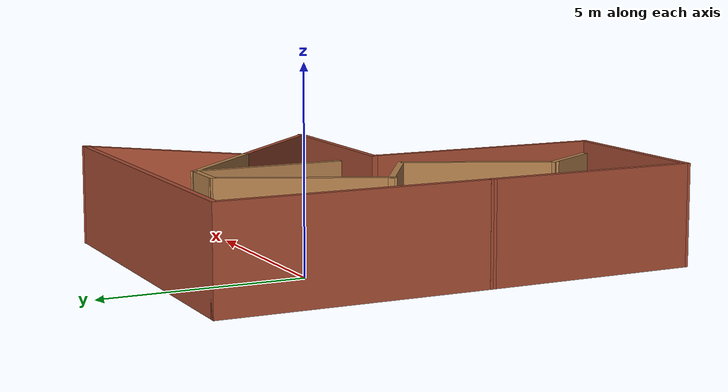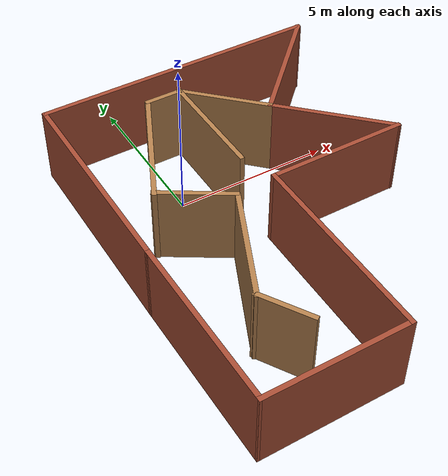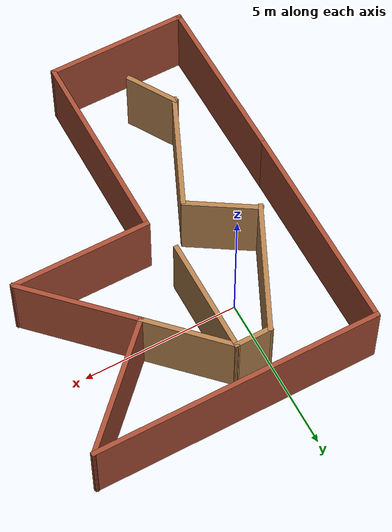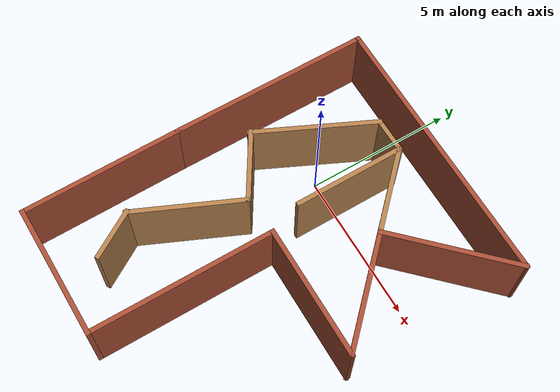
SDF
<?xml version='1.0'?>
<sdf version='1.7'>
  <model name='office.world'>
    <pose>1.74881 -2.66528 0 0 -0 0</pose>
    <link name='Wall_15'>
      <collision name='Wall_15_Collision'>
        <geometry>
          <box>
            <size>6.75 0.15 2.5</size>
          </box>
        </geometry>
        <pose>0 0 1.25 0 -0 0</pose>
      </collision>
      <visual name='Wall_15_Visual'>
        <pose>0 0 1.25 0 -0 0</pose>
        <geometry>
          <box>
            <size>6.75 0.15 2.5</size>
          </box>
        </geometry>
        <material>
          <script>
            <uri>file://media/materials/scripts/gazebo.material</uri>
            <name>Gazebo/Bricks</name>
          </script>
          <ambient>1 1 1 1</ambient>
        </material>
        <meta>
          <layer>0</layer>
        </meta>
      </visual>
      <pose>-4.56521 2.63393 0 0 -0 1.5708</pose>
    </link>
    <link name='Wall_17'>
      <collision name='Wall_17_Collision'>
        <geometry>
          <box>
            <size>9.25 0.15 2.5</size>
          </box>
        </geometry>
        <pose>0 0 1.25 0 -0 0</pose>
      </collision>
      <visual name='Wall_17_Visual'>
        <pose>0 0 1.25 0 -0 0</pose>
        <geometry>
          <box>
            <size>9.25 0.15 2.5</size>
          </box>
        </geometry>
        <material>
          <script>
            <uri>file://media/materials/scripts/gazebo.material</uri>
            <name>Gazebo/Bricks</name>
          </script>
          <ambient>1 1 1 1</ambient>
        </material>
        <meta>
          <layer>0</layer>
        </meta>
      </visual>
      <pose>-0.015206 5.93393 0 0 -0 0</pose>
    </link>
    <link name='Wall_18'>
      <collision name='Wall_18_Collision'>
        <geometry>
          <box>
            <size>4.5 0.15 2.5</size>
          </box>
        </geometry>
        <pose>0 0 1.25 0 -0 0</pose>
      </collision>
      <visual name='Wall_18_Visual'>
        <pose>0 0 1.25 0 -0 0</pose>
        <geometry>
          <box>
            <size>4.5 0.15 2.5</size>
          </box>
        </geometry>
        <material>
          <script>
            <uri>file://media/materials/scripts/gazebo.material</uri>
            <name>Gazebo/Bricks</name>
          </script>
          <ambient>1 1 1 1</ambient>
        </material>
        <meta>
          <layer>0</layer>
        </meta>
      </visual>
      <pose>2.99684 4.39597 0 0 -0 -2.35619</pose>
    </link>
    <link name='Wall_19'>
      <collision name='Wall_19_Collision'>
        <geometry>
          <box>
            <size>4 0.15 2.5</size>
          </box>
        </geometry>
        <pose>0 0 1.25 0 -0 0</pose>
      </collision>
      <visual name='Wall_19_Visual'>
        <pose>0 0 1.25 0 -0 0</pose>
        <geometry>
          <box>
            <size>4 0.15 2.5</size>
          </box>
        </geometry>
        <material>
          <script>
            <uri>file://media/materials/scripts/gazebo.material</uri>
            <name>Gazebo/Bricks</name>
          </script>
          <ambient>1 1 1 1</ambient>
        </material>
        <meta>
          <layer>0</layer>
        </meta>
      </visual>
      <pose>2.82006 1.49684 0 0 -0 -0.785398</pose>
    </link>
    <link name='Wall_20'>
      <collision name='Wall_20_Collision'>
        <geometry>
          <box>
            <size>4.5 0.15 2.5</size>
          </box>
        </geometry>
        <pose>0 0 1.25 0 -0 0</pose>
      </collision>
      <visual name='Wall_20_Visual'>
        <pose>0 0 1.25 0 -0 0</pose>
        <geometry>
          <box>
            <size>4.5 0.15 2.5</size>
          </box>
        </geometry>
        <material>
          <script>
            <uri>file://media/materials/scripts/gazebo.material</uri>
            <name>Gazebo/Bricks</name>
          </script>
          <ambient>1 1 1 1</ambient>
        </material>
        <meta>
          <layer>0</layer>
        </meta>
      </visual>
      <pose>2.00624 0.135656 0 0 -0 3.14159</pose>
    </link>
    <link name='Wall_21'>
      <collision name='Wall_21_Collision'>
        <geometry>
          <box>
            <size>6.25 0.15 2.5</size>
          </box>
        </geometry>
        <pose>0 0 1.25 0 -0 0</pose>
      </collision>
      <visual name='Wall_21_Visual'>
        <pose>0 0 1.25 0 -0 0</pose>
        <geometry>
          <box>
            <size>6.25 0.15 2.5</size>
          </box>
        </geometry>
        <material>
          <script>
            <uri>file://media/materials/scripts/gazebo.material</uri>
            <name>Gazebo/Bricks</name>
          </script>
          <ambient>1 1 1 1</ambient>
        </material>
        <meta>
          <layer>0</layer>
        </meta>
      </visual>
      <pose>-0.168759 -2.91434 0 0 -0 -1.5708</pose>
    </link>
    <link name='Wall_22'>
      <collision name='Wall_22_Collision'>
        <geometry>
          <box>
            <size>4.5 0.15 2.5</size>
          </box>
        </geometry>
        <pose>0 0 1.25 0 -0 0</pose>
      </collision>
      <visual name='Wall_22_Visual'>
        <pose>0 0 1.25 0 -0 0</pose>
        <geometry>
          <box>
            <size>4.5 0.15 2.5</size>
          </box>
        </geometry>
        <material>
          <script>
            <uri>file://media/materials/scripts/gazebo.material</uri>
            <name>Gazebo/Bricks</name>
          </script>
          <ambient>1 1 1 1</ambient>
        </material>
        <meta>
          <layer>0</layer>
        </meta>
      </visual>
      <pose>-2.34376 -5.96434 0 0 -0 3.14159</pose>
    </link>
    <link name='Wall_23'>
      <collision name='Wall_23_Collision'>
        <geometry>
          <box>
            <size>5.44848 0.15 2.5</size>
          </box>
        </geometry>
        <pose>0 0 1.25 0 -0 0</pose>
      </collision>
      <visual name='Wall_23_Visual'>
        <pose>0 0 1.25 0 -0 0</pose>
        <geometry>
          <box>
            <size>5.44848 0.15 2.5</size>
          </box>
        </geometry>
        <material>
          <script>
            <uri>file://media/materials/scripts/gazebo.material</uri>
            <name>Gazebo/Bricks</name>
          </script>
          <ambient>1 1 1 1</ambient>
        </material>
        <meta>
          <layer>0</layer>
        </meta>
      </visual>
      <pose>-4.54198 -3.31521 0 0 -0 1.57956</pose>
    </link>
    <link name='Wall_25'>
      <collision name='Wall_25_Collision'>
        <geometry>
          <box>
            <size>3 0.15 2.5</size>
          </box>
        </geometry>
        <pose>0 0 1.25 0 -0 0</pose>
      </collision>
      <visual name='Wall_25_Visual'>
        <pose>0 0 1.25 0 -0 0</pose>
        <geometry>
          <box>
            <size>3 0.15 2.5</size>
          </box>
        </geometry>
        <material>
          <script>
            <uri>file://media/materials/scripts/gazebo.material</uri>
            <name>Gazebo/Wood</name>
          </script>
          <ambient>1 1 1 1</ambient>
        </material>
        <meta>
          <layer>0</layer>
        </meta>
      </visual>
      <pose>0.451252 3.86564 0 0 -0 2.35619</pose>
    </link>
    <link name='Wall_26'>
      <collision name='Wall_26_Collision'>
        <geometry>
          <box>
            <size>3.75 0.15 2.5</size>
          </box>
        </geometry>
        <pose>0 0 1.25 0 -0 0</pose>
      </collision>
      <visual name='Wall_26_Visual'>
        <pose>0 0 1.25 0 -0 0</pose>
        <geometry>
          <box>
            <size>3.75 0.15 2.5</size>
          </box>
        </geometry>
        <material>
          <script>
            <uri>file://media/materials/scripts/gazebo.material</uri>
            <name>Gazebo/Wood</name>
          </script>
          <ambient>1 1 1 1</ambient>
        </material>
        <meta>
          <layer>0</layer>
        </meta>
      </visual>
      <pose>-0.556375 3.07327 0 0 -0 -1.5708</pose>
    </link>
    <link name='Wall_28'>
      <collision name='Wall_28_Collision'>
        <geometry>
          <box>
            <size>1.25 0.15 2.5</size>
          </box>
        </geometry>
        <pose>0 0 1.25 0 -0 0</pose>
      </collision>
      <visual name='Wall_28_Visual'>
        <pose>0 0 1.25 0 -0 0</pose>
        <geometry>
          <box>
            <size>1.25 0.15 2.5</size>
          </box>
        </geometry>
        <material>
          <script>
            <uri>file://media/materials/scripts/gazebo.material</uri>
            <name>Gazebo/Wood</name>
          </script>
          <ambient>1 1 1 1</ambient>
        </material>
        <meta>
          <layer>0</layer>
        </meta>
      </visual>
      <pose>-1.10638 4.87327 0 0 -0 3.14159</pose>
    </link>
    <link name='Wall_29'>
      <collision name='Wall_29_Collision'>
        <geometry>
          <box>
            <size>4.20196 0.15 2.5</size>
          </box>
        </geometry>
        <pose>0 0 1.25 0 -0 0</pose>
      </collision>
      <visual name='Wall_29_Visual'>
        <pose>0 0 1.25 0 -0 0</pose>
        <geometry>
          <box>
            <size>4.20196 0.15 2.5</size>
          </box>
        </geometry>
        <material>
          <script>
            <uri>file://media/materials/scripts/gazebo.material</uri>
            <name>Gazebo/Wood</name>
          </script>
          <ambient>1 1 1 1</ambient>
        </material>
        <meta>
          <layer>0</layer>
        </meta>
      </visual>
      <pose>-2.52583 3.04334 0 0 -0 -2.01435</pose>
    </link>
    <link name='Wall_30'>
      <collision name='Wall_30_Collision'>
        <geometry>
          <box>
            <size>2.44432 0.15 2.5</size>
          </box>
        </geometry>
        <pose>0 0 1.25 0 -0 0</pose>
      </collision>
      <visual name='Wall_30_Visual'>
        <pose>0 0 1.25 0 -0 0</pose>
        <geometry>
          <box>
            <size>2.44432 0.15 2.5</size>
          </box>
        </geometry>
        <material>
          <script>
            <uri>file://media/materials/scripts/gazebo.material</uri>
            <name>Gazebo/Wood</name>
          </script>
          <ambient>1 1 1 1</ambient>
        </material>
        <meta>
          <layer>0</layer>
        </meta>
      </visual>
      <pose>-2.42422 0.649168 0 0 -0 -0.561447</pose>
    </link>
    <link name='Wall_31'>
      <collision name='Wall_31_Collision'>
        <geometry>
          <box>
            <size>3.78798 0.15 2.5</size>
          </box>
        </geometry>
        <pose>0 0 1.25 0 -0 0</pose>
      </collision>
      <visual name='Wall_31_Visual'>
        <pose>0 0 1.25 0 -0 0</pose>
        <geometry>
          <box>
            <size>3.78798 0.15 2.5</size>
          </box>
        </geometry>
        <material>
          <script>
            <uri>file://media/materials/scripts/gazebo.material</uri>
            <name>Gazebo/Wood</name>
          </script>
          <ambient>1 1 1 1</ambient>
        </material>
        <meta>
          <layer>0</layer>
        </meta>
      </visual>
      <pose>-2.19902 -1.66716 0 0 -0 -1.99329</pose>
    </link>
    <link name='Wall_32'>
      <collision name='Wall_32_Collision'>
        <geometry>
          <box>
            <size>1.77376 0.15 2.5</size>
          </box>
        </geometry>
        <pose>0 0 1.25 0 -0 0</pose>
      </collision>
      <visual name='Wall_32_Visual'>
        <pose>0 0 1.25 0 -0 0</pose>
        <geometry>
          <box>
            <size>1.77376 0.15 2.5</size>
          </box>
        </geometry>
        <material>
          <script>
            <uri>file://media/materials/scripts/gazebo.material</uri>
            <name>Gazebo/Wood</name>
          </script>
          <ambient>1 1 1 1</ambient>
        </material>
        <meta>
          <layer>0</layer>
        </meta>
      </visual>
      <pose>-2.52162 -3.9725 0 0 -0 -1.02238</pose>
    </link>
    <static>1</static>
  </model>
</sdf>
